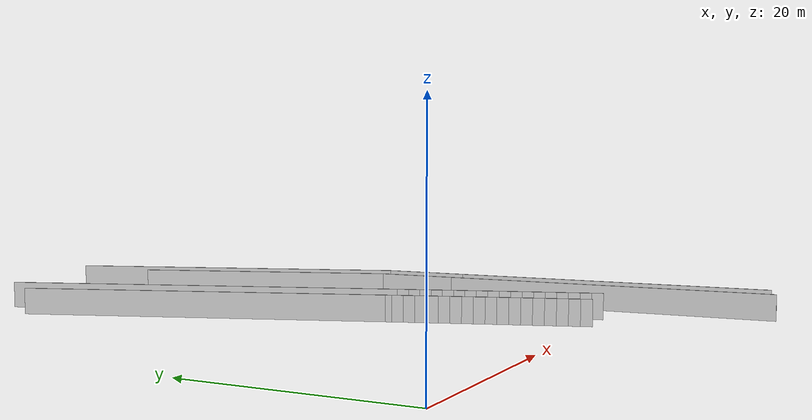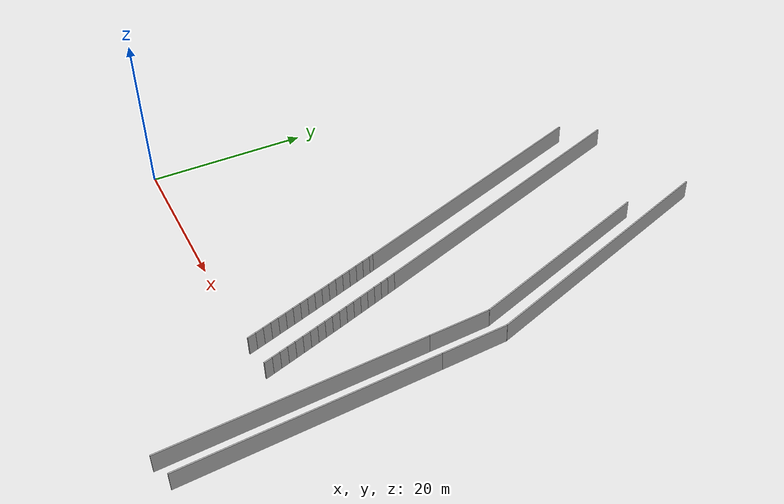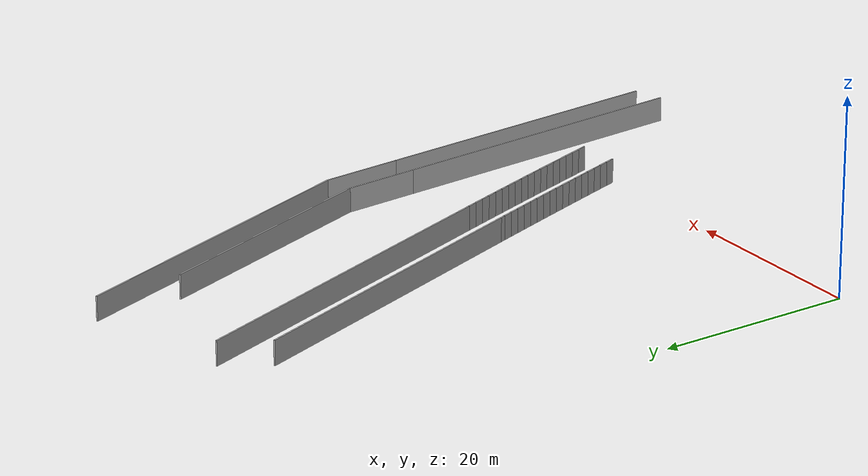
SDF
<?xml version="1.0" ?>
<sdf version="1.6">
  <model name="sps_4531">
    <pose frame="">0 0 0 0 -0 0</pose>
    <static>1</static>
    <self_collide>0</self_collide>
    <allow_auto_disable>0</allow_auto_disable>
    <link name="Wall79">
      <kinematic>0</kinematic>
      <gravity>1</gravity>
      <self_collide>0</self_collide>
      <collision name="collision">
        <geometry>
          <box>
            <size>34.9065 0.15 2.5</size>
          </box>
        </geometry>
        <pose frame="">0 0 0 0 -0 0</pose>
      </collision>
      <visual name="visual">
        <geometry>
          <box>
            <size>34.9065 0.15 2.5</size>
          </box>
        </geometry>
        <pose frame="">0 0 0 0 -0 0</pose>
        <cast_shadows>1</cast_shadows>
        <transparency>0.0</transparency>
      </visual>
      <pose frame="">40.3598 42.6503 1.25 0 0 -1.22655</pose>
    </link>
    <link name="Wall321">
      <kinematic>0</kinematic>
      <gravity>1</gravity>
      <self_collide>0</self_collide>
      <collision name="collision">
        <geometry>
          <box>
            <size>38.8428 0.15 2.5</size>
          </box>
        </geometry>
        <pose frame="">0 0 0 0 -0 0</pose>
      </collision>
      <visual name="visual">
        <geometry>
          <box>
            <size>38.8428 0.15 2.5</size>
          </box>
        </geometry>
        <pose frame="">0 0 0 0 -0 0</pose>
        <cast_shadows>1</cast_shadows>
        <transparency>0.0</transparency>
      </visual>
      <pose frame="">26.4372 37.007 1.25 0 0 -1.22664</pose>
    </link>
    <link name="Wall578">
      <kinematic>0</kinematic>
      <gravity>1</gravity>
      <self_collide>0</self_collide>
      <collision name="collision">
        <geometry>
          <box>
            <size>26.1171 0.15 2.5</size>
          </box>
        </geometry>
        <pose frame="">0 0 0 0 -0 0</pose>
      </collision>
      <visual name="visual">
        <geometry>
          <box>
            <size>26.1171 0.15 2.5</size>
          </box>
        </geometry>
        <pose frame="">0 0 0 0 -0 0</pose>
        <cast_shadows>1</cast_shadows>
        <transparency>0.0</transparency>
      </visual>
      <pose frame="">38.8765 37.8979 1.25 0 0 -1.22655</pose>
    </link>
    <link name="Wall579">
      <kinematic>0</kinematic>
      <gravity>1</gravity>
      <self_collide>0</self_collide>
      <collision name="collision">
        <geometry>
          <box>
            <size>8.34564 0.15 2.5</size>
          </box>
        </geometry>
        <pose frame="">0 0 0 0 -0 0</pose>
      </collision>
      <visual name="visual">
        <geometry>
          <box>
            <size>8.34564 0.15 2.5</size>
          </box>
        </geometry>
        <pose frame="">0 0 0 0 -0 0</pose>
        <cast_shadows>1</cast_shadows>
        <transparency>0.0</transparency>
      </visual>
      <pose frame="">46.5213 22.0571 1.25 0 0 -1.50576</pose>
    </link>
    <link name="Wall580">
      <kinematic>0</kinematic>
      <gravity>1</gravity>
      <self_collide>0</self_collide>
      <collision name="collision">
        <geometry>
          <box>
            <size>31.2306 0.15 2.5</size>
          </box>
        </geometry>
        <pose frame="">0 0 0 0 -0 0</pose>
      </collision>
      <visual name="visual">
        <geometry>
          <box>
            <size>31.2306 0.15 2.5</size>
          </box>
        </geometry>
        <pose frame="">0 0 0 0 -0 0</pose>
        <cast_shadows>1</cast_shadows>
        <transparency>0.0</transparency>
      </visual>
      <pose frame="">47.8072 2.31077 1.25 0 0 -1.50576</pose>
    </link>
    <link name="Wall656">
      <kinematic>0</kinematic>
      <gravity>1</gravity>
      <self_collide>0</self_collide>
      <collision name="collision">
        <geometry>
          <box>
            <size>0.58996 0.15 2.5</size>
          </box>
        </geometry>
        <pose frame="">0 0 0 0 -0 0</pose>
      </collision>
      <visual name="visual">
        <geometry>
          <box>
            <size>0.58996 0.15 2.5</size>
          </box>
        </geometry>
        <pose frame="">0 0 0 0 -0 0</pose>
        <cast_shadows>1</cast_shadows>
        <transparency>0.0</transparency>
      </visual>
      <pose frame="">28.9899 17.6154 1.25 0 -0 1.91499</pose>
    </link>
    <link name="Wall657">
      <kinematic>0</kinematic>
      <gravity>1</gravity>
      <self_collide>0</self_collide>
      <collision name="collision">
        <geometry>
          <box>
            <size>35.1918 0.15 2.5</size>
          </box>
        </geometry>
        <pose frame="">0 0 0 0 -0 0</pose>
      </collision>
      <visual name="visual">
        <geometry>
          <box>
            <size>35.1918 0.15 2.5</size>
          </box>
        </geometry>
        <pose frame="">0 0 0 0 -0 0</pose>
        <cast_shadows>1</cast_shadows>
        <transparency>0.0</transparency>
      </visual>
      <pose frame="">22.9529 34.457 1.25 0 -0 1.91499</pose>
    </link>
    <link name="Wall658">
      <kinematic>0</kinematic>
      <gravity>1</gravity>
      <self_collide>0</self_collide>
      <collision name="collision">
        <geometry>
          <box>
            <size>7.72874 0.15 2.5</size>
          </box>
        </geometry>
        <pose frame="">0 0 0 0 -0 0</pose>
      </collision>
      <visual name="visual">
        <geometry>
          <box>
            <size>7.72874 0.15 2.5</size>
          </box>
        </geometry>
        <pose frame="">0 0 0 0 -0 0</pose>
        <cast_shadows>1</cast_shadows>
        <transparency>0.0</transparency>
      </visual>
      <pose frame="">43.5348 21.7493 1.25 0 0 -1.50576</pose>
    </link>
    <link name="Wall659">
      <kinematic>0</kinematic>
      <gravity>1</gravity>
      <self_collide>0</self_collide>
      <collision name="collision">
        <geometry>
          <box>
            <size>32.1389 0.15 2.5</size>
          </box>
        </geometry>
        <pose frame="">0 0 0 0 -0 0</pose>
      </collision>
      <visual name="visual">
        <geometry>
          <box>
            <size>32.1389 0.15 2.5</size>
          </box>
        </geometry>
        <pose frame="">0 0 0 0 -0 0</pose>
        <cast_shadows>1</cast_shadows>
        <transparency>0.0</transparency>
      </visual>
      <pose frame="">44.8302 1.85759 1.25 0 0 -1.50576</pose>
    </link>
    <link name="Wall8224">
      <kinematic>0</kinematic>
      <gravity>1</gravity>
      <self_collide>0</self_collide>
      <collision name="collision">
        <geometry>
          <box>
            <size>1.08068 0.15 2.5</size>
          </box>
        </geometry>
        <pose frame="">0 0 0 0 -0 0</pose>
      </collision>
      <visual name="visual">
        <geometry>
          <box>
            <size>1.08068 0.15 2.5</size>
          </box>
        </geometry>
        <pose frame="">0 0 0 0 -0 0</pose>
        <cast_shadows>1</cast_shadows>
        <transparency>0.0</transparency>
      </visual>
      <pose frame="">39.1469 0.842879 1.25 0 -0 1.8926</pose>
    </link>
    <link name="Wall8225">
      <kinematic>0</kinematic>
      <gravity>1</gravity>
      <self_collide>0</self_collide>
      <collision name="collision">
        <geometry>
          <box>
            <size>1.08059 0.15 2.5</size>
          </box>
        </geometry>
        <pose frame="">0 0 0 0 -0 0</pose>
      </collision>
      <visual name="visual">
        <geometry>
          <box>
            <size>1.08059 0.15 2.5</size>
          </box>
        </geometry>
        <pose frame="">0 0 0 0 -0 0</pose>
        <cast_shadows>1</cast_shadows>
        <transparency>0.0</transparency>
      </visual>
      <pose frame="">38.8046 1.86787 1.25 0 -0 1.89358</pose>
    </link>
    <link name="Wall8226">
      <kinematic>0</kinematic>
      <gravity>1</gravity>
      <self_collide>0</self_collide>
      <collision name="collision">
        <geometry>
          <box>
            <size>1.08063 0.15 2.5</size>
          </box>
        </geometry>
        <pose frame="">0 0 0 0 -0 0</pose>
      </collision>
      <visual name="visual">
        <geometry>
          <box>
            <size>1.08063 0.15 2.5</size>
          </box>
        </geometry>
        <pose frame="">0 0 0 0 -0 0</pose>
        <cast_shadows>1</cast_shadows>
        <transparency>0.0</transparency>
      </visual>
      <pose frame="">38.4613 2.89247 1.25 0 -0 1.89476</pose>
    </link>
    <link name="Wall8227">
      <kinematic>0</kinematic>
      <gravity>1</gravity>
      <self_collide>0</self_collide>
      <collision name="collision">
        <geometry>
          <box>
            <size>1.08084 0.15 2.5</size>
          </box>
        </geometry>
        <pose frame="">0 0 0 0 -0 0</pose>
      </collision>
      <visual name="visual">
        <geometry>
          <box>
            <size>1.08084 0.15 2.5</size>
          </box>
        </geometry>
        <pose frame="">0 0 0 0 -0 0</pose>
        <cast_shadows>1</cast_shadows>
        <transparency>0.0</transparency>
      </visual>
      <pose frame="">38.1167 3.91679 1.25 0 -0 1.89589</pose>
    </link>
    <link name="Wall8228">
      <kinematic>0</kinematic>
      <gravity>1</gravity>
      <self_collide>0</self_collide>
      <collision name="collision">
        <geometry>
          <box>
            <size>1.08052 0.15 2.5</size>
          </box>
        </geometry>
        <pose frame="">0 0 0 0 -0 0</pose>
      </collision>
      <visual name="visual">
        <geometry>
          <box>
            <size>1.08052 0.15 2.5</size>
          </box>
        </geometry>
        <pose frame="">0 0 0 0 -0 0</pose>
        <cast_shadows>1</cast_shadows>
        <transparency>0.0</transparency>
      </visual>
      <pose frame="">37.771 4.94069 1.25 0 -0 1.89694</pose>
    </link>
    <link name="Wall8229">
      <kinematic>0</kinematic>
      <gravity>1</gravity>
      <self_collide>0</self_collide>
      <collision name="collision">
        <geometry>
          <box>
            <size>1.0808 0.15 2.5</size>
          </box>
        </geometry>
        <pose frame="">0 0 0 0 -0 0</pose>
      </collision>
      <visual name="visual">
        <geometry>
          <box>
            <size>1.0808 0.15 2.5</size>
          </box>
        </geometry>
        <pose frame="">0 0 0 0 -0 0</pose>
        <cast_shadows>1</cast_shadows>
        <transparency>0.0</transparency>
      </visual>
      <pose frame="">37.4242 5.96419 1.25 0 -0 1.89805</pose>
    </link>
    <link name="Wall8230">
      <kinematic>0</kinematic>
      <gravity>1</gravity>
      <self_collide>0</self_collide>
      <collision name="collision">
        <geometry>
          <box>
            <size>1.08076 0.15 2.5</size>
          </box>
        </geometry>
        <pose frame="">0 0 0 0 -0 0</pose>
      </collision>
      <visual name="visual">
        <geometry>
          <box>
            <size>1.08076 0.15 2.5</size>
          </box>
        </geometry>
        <pose frame="">0 0 0 0 -0 0</pose>
        <cast_shadows>1</cast_shadows>
        <transparency>0.0</transparency>
      </visual>
      <pose frame="">37.0762 6.98741 1.25 0 -0 1.89919</pose>
    </link>
    <link name="Wall8231">
      <kinematic>0</kinematic>
      <gravity>1</gravity>
      <self_collide>0</self_collide>
      <collision name="collision">
        <geometry>
          <box>
            <size>1.08058 0.15 2.5</size>
          </box>
        </geometry>
        <pose frame="">0 0 0 0 -0 0</pose>
      </collision>
      <visual name="visual">
        <geometry>
          <box>
            <size>1.08058 0.15 2.5</size>
          </box>
        </geometry>
        <pose frame="">0 0 0 0 -0 0</pose>
        <cast_shadows>1</cast_shadows>
        <transparency>0.0</transparency>
      </visual>
      <pose frame="">36.727 8.01012 1.25 0 -0 1.90044</pose>
    </link>
    <link name="Wall8232">
      <kinematic>0</kinematic>
      <gravity>1</gravity>
      <self_collide>0</self_collide>
      <collision name="collision">
        <geometry>
          <box>
            <size>1.08075 0.15 2.5</size>
          </box>
        </geometry>
        <pose frame="">0 0 0 0 -0 0</pose>
      </collision>
      <visual name="visual">
        <geometry>
          <box>
            <size>1.08075 0.15 2.5</size>
          </box>
        </geometry>
        <pose frame="">0 0 0 0 -0 0</pose>
        <cast_shadows>1</cast_shadows>
        <transparency>0.0</transparency>
      </visual>
      <pose frame="">36.3766 9.03239 1.25 0 -0 1.90158</pose>
    </link>
    <link name="Wall8233">
      <kinematic>0</kinematic>
      <gravity>1</gravity>
      <self_collide>0</self_collide>
      <collision name="collision">
        <geometry>
          <box>
            <size>1.08085 0.15 2.5</size>
          </box>
        </geometry>
        <pose frame="">0 0 0 0 -0 0</pose>
      </collision>
      <visual name="visual">
        <geometry>
          <box>
            <size>1.08085 0.15 2.5</size>
          </box>
        </geometry>
        <pose frame="">0 0 0 0 -0 0</pose>
        <cast_shadows>1</cast_shadows>
        <transparency>0.0</transparency>
      </visual>
      <pose frame="">36.025 10.0544 1.25 0 -0 1.90274</pose>
    </link>
    <link name="Wall8234">
      <kinematic>0</kinematic>
      <gravity>1</gravity>
      <self_collide>0</self_collide>
      <collision name="collision">
        <geometry>
          <box>
            <size>1.08071 0.15 2.5</size>
          </box>
        </geometry>
        <pose frame="">0 0 0 0 -0 0</pose>
      </collision>
      <visual name="visual">
        <geometry>
          <box>
            <size>1.08071 0.15 2.5</size>
          </box>
        </geometry>
        <pose frame="">0 0 0 0 -0 0</pose>
        <cast_shadows>1</cast_shadows>
        <transparency>0.0</transparency>
      </visual>
      <pose frame="">35.6722 11.076 1.25 0 -0 1.90375</pose>
    </link>
    <link name="Wall8235">
      <kinematic>0</kinematic>
      <gravity>1</gravity>
      <self_collide>0</self_collide>
      <collision name="collision">
        <geometry>
          <box>
            <size>1.08057 0.15 2.5</size>
          </box>
        </geometry>
        <pose frame="">0 0 0 0 -0 0</pose>
      </collision>
      <visual name="visual">
        <geometry>
          <box>
            <size>1.08057 0.15 2.5</size>
          </box>
        </geometry>
        <pose frame="">0 0 0 0 -0 0</pose>
        <cast_shadows>1</cast_shadows>
        <transparency>0.0</transparency>
      </visual>
      <pose frame="">35.3184 12.0971 1.25 0 -0 1.90493</pose>
    </link>
    <link name="Wall8236">
      <kinematic>0</kinematic>
      <gravity>1</gravity>
      <self_collide>0</self_collide>
      <collision name="collision">
        <geometry>
          <box>
            <size>1.0808 0.15 2.5</size>
          </box>
        </geometry>
        <pose frame="">0 0 0 0 -0 0</pose>
      </collision>
      <visual name="visual">
        <geometry>
          <box>
            <size>1.0808 0.15 2.5</size>
          </box>
        </geometry>
        <pose frame="">0 0 0 0 -0 0</pose>
        <cast_shadows>1</cast_shadows>
        <transparency>0.0</transparency>
      </visual>
      <pose frame="">34.9634 13.1178 1.25 0 -0 1.90623</pose>
    </link>
    <link name="Wall8237">
      <kinematic>0</kinematic>
      <gravity>1</gravity>
      <self_collide>0</self_collide>
      <collision name="collision">
        <geometry>
          <box>
            <size>1.08057 0.15 2.5</size>
          </box>
        </geometry>
        <pose frame="">0 0 0 0 -0 0</pose>
      </collision>
      <visual name="visual">
        <geometry>
          <box>
            <size>1.08057 0.15 2.5</size>
          </box>
        </geometry>
        <pose frame="">0 0 0 0 -0 0</pose>
        <cast_shadows>1</cast_shadows>
        <transparency>0.0</transparency>
      </visual>
      <pose frame="">34.6072 14.1381 1.25 0 -0 1.90714</pose>
    </link>
    <link name="Wall8238">
      <kinematic>0</kinematic>
      <gravity>1</gravity>
      <self_collide>0</self_collide>
      <collision name="collision">
        <geometry>
          <box>
            <size>1.08084 0.15 2.5</size>
          </box>
        </geometry>
        <pose frame="">0 0 0 0 -0 0</pose>
      </collision>
      <visual name="visual">
        <geometry>
          <box>
            <size>1.08084 0.15 2.5</size>
          </box>
        </geometry>
        <pose frame="">0 0 0 0 -0 0</pose>
        <cast_shadows>1</cast_shadows>
        <transparency>0.0</transparency>
      </visual>
      <pose frame="">34.2499 15.158 1.25 0 -0 1.90837</pose>
    </link>
    <link name="Wall8239">
      <kinematic>0</kinematic>
      <gravity>1</gravity>
      <self_collide>0</self_collide>
      <collision name="collision">
        <geometry>
          <box>
            <size>1.08055 0.15 2.5</size>
          </box>
        </geometry>
        <pose frame="">0 0 0 0 -0 0</pose>
      </collision>
      <visual name="visual">
        <geometry>
          <box>
            <size>1.08055 0.15 2.5</size>
          </box>
        </geometry>
        <pose frame="">0 0 0 0 -0 0</pose>
        <cast_shadows>1</cast_shadows>
        <transparency>0.0</transparency>
      </visual>
      <pose frame="">33.8914 16.1775 1.25 0 -0 1.90948</pose>
    </link>
    <link name="Wall8240">
      <kinematic>0</kinematic>
      <gravity>1</gravity>
      <self_collide>0</self_collide>
      <collision name="collision">
        <geometry>
          <box>
            <size>1.08078 0.15 2.5</size>
          </box>
        </geometry>
        <pose frame="">0 0 0 0 -0 0</pose>
      </collision>
      <visual name="visual">
        <geometry>
          <box>
            <size>1.08078 0.15 2.5</size>
          </box>
        </geometry>
        <pose frame="">0 0 0 0 -0 0</pose>
        <cast_shadows>1</cast_shadows>
        <transparency>0.0</transparency>
      </visual>
      <pose frame="">33.5318 17.1966 1.25 0 -0 1.9106</pose>
    </link>
    <link name="Wall8241">
      <kinematic>0</kinematic>
      <gravity>1</gravity>
      <self_collide>0</self_collide>
      <collision name="collision">
        <geometry>
          <box>
            <size>1.08071 0.15 2.5</size>
          </box>
        </geometry>
        <pose frame="">0 0 0 0 -0 0</pose>
      </collision>
      <visual name="visual">
        <geometry>
          <box>
            <size>1.08071 0.15 2.5</size>
          </box>
        </geometry>
        <pose frame="">0 0 0 0 -0 0</pose>
        <cast_shadows>1</cast_shadows>
        <transparency>0.0</transparency>
      </visual>
      <pose frame="">33.1709 18.2153 1.25 0 -0 1.91194</pose>
    </link>
    <link name="Wall9136">
      <kinematic>0</kinematic>
      <gravity>1</gravity>
      <self_collide>0</self_collide>
      <collision name="collision">
        <geometry>
          <box>
            <size>1.07599 0.15 2.5</size>
          </box>
        </geometry>
        <pose frame="">0 0 0 0 -0 0</pose>
      </collision>
      <visual name="visual">
        <geometry>
          <box>
            <size>1.07599 0.15 2.5</size>
          </box>
        </geometry>
        <pose frame="">0 0 0 0 -0 0</pose>
        <cast_shadows>1</cast_shadows>
        <transparency>0.0</transparency>
      </visual>
      <pose frame="">34.8786 0.554702 1.25 0 -0 1.89369</pose>
    </link>
    <link name="Wall9137">
      <kinematic>0</kinematic>
      <gravity>1</gravity>
      <self_collide>0</self_collide>
      <collision name="collision">
        <geometry>
          <box>
            <size>1.07596 0.15 2.5</size>
          </box>
        </geometry>
        <pose frame="">0 0 0 0 -0 0</pose>
      </collision>
      <visual name="visual">
        <geometry>
          <box>
            <size>1.07596 0.15 2.5</size>
          </box>
        </geometry>
        <pose frame="">0 0 0 0 -0 0</pose>
        <cast_shadows>1</cast_shadows>
        <transparency>0.0</transparency>
      </visual>
      <pose frame="">34.5366 1.5749 1.25 0 -0 1.89466</pose>
    </link>
    <link name="Wall9138">
      <kinematic>0</kinematic>
      <gravity>1</gravity>
      <self_collide>0</self_collide>
      <collision name="collision">
        <geometry>
          <box>
            <size>1.076 0.15 2.5</size>
          </box>
        </geometry>
        <pose frame="">0 0 0 0 -0 0</pose>
      </collision>
      <visual name="visual">
        <geometry>
          <box>
            <size>1.076 0.15 2.5</size>
          </box>
        </geometry>
        <pose frame="">0 0 0 0 -0 0</pose>
        <cast_shadows>1</cast_shadows>
        <transparency>0.0</transparency>
      </visual>
      <pose frame="">34.1935 2.59471 1.25 0 -0 1.89603</pose>
    </link>
    <link name="Wall9139">
      <kinematic>0</kinematic>
      <gravity>1</gravity>
      <self_collide>0</self_collide>
      <collision name="collision">
        <geometry>
          <box>
            <size>1.07591 0.15 2.5</size>
          </box>
        </geometry>
        <pose frame="">0 0 0 0 -0 0</pose>
      </collision>
      <visual name="visual">
        <geometry>
          <box>
            <size>1.07591 0.15 2.5</size>
          </box>
        </geometry>
        <pose frame="">0 0 0 0 -0 0</pose>
        <cast_shadows>1</cast_shadows>
        <transparency>0.0</transparency>
      </visual>
      <pose frame="">33.8492 3.61409 1.25 0 -0 1.89701</pose>
    </link>
    <link name="Wall9140">
      <kinematic>0</kinematic>
      <gravity>1</gravity>
      <self_collide>0</self_collide>
      <collision name="collision">
        <geometry>
          <box>
            <size>1.07618 0.15 2.5</size>
          </box>
        </geometry>
        <pose frame="">0 0 0 0 -0 0</pose>
      </collision>
      <visual name="visual">
        <geometry>
          <box>
            <size>1.07618 0.15 2.5</size>
          </box>
        </geometry>
        <pose frame="">0 0 0 0 -0 0</pose>
        <cast_shadows>1</cast_shadows>
        <transparency>0.0</transparency>
      </visual>
      <pose frame="">33.5038 4.63319 1.25 0 -0 1.89812</pose>
    </link>
    <link name="Wall9141">
      <kinematic>0</kinematic>
      <gravity>1</gravity>
      <self_collide>0</self_collide>
      <collision name="collision">
        <geometry>
          <box>
            <size>1.07586 0.15 2.5</size>
          </box>
        </geometry>
        <pose frame="">0 0 0 0 -0 0</pose>
      </collision>
      <visual name="visual">
        <geometry>
          <box>
            <size>1.07586 0.15 2.5</size>
          </box>
        </geometry>
        <pose frame="">0 0 0 0 -0 0</pose>
        <cast_shadows>1</cast_shadows>
        <transparency>0.0</transparency>
      </visual>
      <pose frame="">33.1573 5.6519 1.25 0 -0 1.89918</pose>
    </link>
    <link name="Wall9142">
      <kinematic>0</kinematic>
      <gravity>1</gravity>
      <self_collide>0</self_collide>
      <collision name="collision">
        <geometry>
          <box>
            <size>1.07608 0.15 2.5</size>
          </box>
        </geometry>
        <pose frame="">0 0 0 0 -0 0</pose>
      </collision>
      <visual name="visual">
        <geometry>
          <box>
            <size>1.07608 0.15 2.5</size>
          </box>
        </geometry>
        <pose frame="">0 0 0 0 -0 0</pose>
        <cast_shadows>1</cast_shadows>
        <transparency>0.0</transparency>
      </visual>
      <pose frame="">32.8097 6.67018 1.25 0 -0 1.90031</pose>
    </link>
    <link name="Wall9143">
      <kinematic>0</kinematic>
      <gravity>1</gravity>
      <self_collide>0</self_collide>
      <collision name="collision">
        <geometry>
          <box>
            <size>1.07594 0.15 2.5</size>
          </box>
        </geometry>
        <pose frame="">0 0 0 0 -0 0</pose>
      </collision>
      <visual name="visual">
        <geometry>
          <box>
            <size>1.07594 0.15 2.5</size>
          </box>
        </geometry>
        <pose frame="">0 0 0 0 -0 0</pose>
        <cast_shadows>1</cast_shadows>
        <transparency>0.0</transparency>
      </visual>
      <pose frame="">32.461 7.68809 1.25 0 -0 1.9015</pose>
    </link>
    <link name="Wall9144">
      <kinematic>0</kinematic>
      <gravity>1</gravity>
      <self_collide>0</self_collide>
      <collision name="collision">
        <geometry>
          <box>
            <size>1.07589 0.15 2.5</size>
          </box>
        </geometry>
        <pose frame="">0 0 0 0 -0 0</pose>
      </collision>
      <visual name="visual">
        <geometry>
          <box>
            <size>1.07589 0.15 2.5</size>
          </box>
        </geometry>
        <pose frame="">0 0 0 0 -0 0</pose>
        <cast_shadows>1</cast_shadows>
        <transparency>0.0</transparency>
      </visual>
      <pose frame="">32.111 8.70549 1.25 0 -0 1.90277</pose>
    </link>
    <link name="Wall9145">
      <kinematic>0</kinematic>
      <gravity>1</gravity>
      <self_collide>0</self_collide>
      <collision name="collision">
        <geometry>
          <box>
            <size>1.07614 0.15 2.5</size>
          </box>
        </geometry>
        <pose frame="">0 0 0 0 -0 0</pose>
      </collision>
      <visual name="visual">
        <geometry>
          <box>
            <size>1.07614 0.15 2.5</size>
          </box>
        </geometry>
        <pose frame="">0 0 0 0 -0 0</pose>
        <cast_shadows>1</cast_shadows>
        <transparency>0.0</transparency>
      </visual>
      <pose frame="">31.7598 9.72258 1.25 0 -0 1.90377</pose>
    </link>
    <link name="Wall9146">
      <kinematic>0</kinematic>
      <gravity>1</gravity>
      <self_collide>0</self_collide>
      <collision name="collision">
        <geometry>
          <box>
            <size>1.07598 0.15 2.5</size>
          </box>
        </geometry>
        <pose frame="">0 0 0 0 -0 0</pose>
      </collision>
      <visual name="visual">
        <geometry>
          <box>
            <size>1.07598 0.15 2.5</size>
          </box>
        </geometry>
        <pose frame="">0 0 0 0 -0 0</pose>
        <cast_shadows>1</cast_shadows>
        <transparency>0.0</transparency>
      </visual>
      <pose frame="">31.4074 10.7393 1.25 0 -0 1.90509</pose>
    </link>
    <link name="Wall9147">
      <kinematic>0</kinematic>
      <gravity>1</gravity>
      <self_collide>0</self_collide>
      <collision name="collision">
        <geometry>
          <box>
            <size>1.0759 0.15 2.5</size>
          </box>
        </geometry>
        <pose frame="">0 0 0 0 -0 0</pose>
      </collision>
      <visual name="visual">
        <geometry>
          <box>
            <size>1.0759 0.15 2.5</size>
          </box>
        </geometry>
        <pose frame="">0 0 0 0 -0 0</pose>
        <cast_shadows>1</cast_shadows>
        <transparency>0.0</transparency>
      </visual>
      <pose frame="">31.0539 11.7555 1.25 0 -0 1.90607</pose>
    </link>
    <link name="Wall9148">
      <kinematic>0</kinematic>
      <gravity>1</gravity>
      <self_collide>0</self_collide>
      <collision name="collision">
        <geometry>
          <box>
            <size>1.07613 0.15 2.5</size>
          </box>
        </geometry>
        <pose frame="">0 0 0 0 -0 0</pose>
      </collision>
      <visual name="visual">
        <geometry>
          <box>
            <size>1.07613 0.15 2.5</size>
          </box>
        </geometry>
        <pose frame="">0 0 0 0 -0 0</pose>
        <cast_shadows>1</cast_shadows>
        <transparency>0.0</transparency>
      </visual>
      <pose frame="">30.6992 12.7714 1.25 0 -0 1.9072</pose>
    </link>
    <link name="Wall9149">
      <kinematic>0</kinematic>
      <gravity>1</gravity>
      <self_collide>0</self_collide>
      <collision name="collision">
        <geometry>
          <box>
            <size>1.07594 0.15 2.5</size>
          </box>
        </geometry>
        <pose frame="">0 0 0 0 -0 0</pose>
      </collision>
      <visual name="visual">
        <geometry>
          <box>
            <size>1.07594 0.15 2.5</size>
          </box>
        </geometry>
        <pose frame="">0 0 0 0 -0 0</pose>
        <cast_shadows>1</cast_shadows>
        <transparency>0.0</transparency>
      </visual>
      <pose frame="">30.3434 13.7869 1.25 0 -0 1.90841</pose>
    </link>
    <link name="Wall9150">
      <kinematic>0</kinematic>
      <gravity>1</gravity>
      <self_collide>0</self_collide>
      <collision name="collision">
        <geometry>
          <box>
            <size>1.07586 0.15 2.5</size>
          </box>
        </geometry>
        <pose frame="">0 0 0 0 -0 0</pose>
      </collision>
      <visual name="visual">
        <geometry>
          <box>
            <size>1.07586 0.15 2.5</size>
          </box>
        </geometry>
        <pose frame="">0 0 0 0 -0 0</pose>
        <cast_shadows>1</cast_shadows>
        <transparency>0.0</transparency>
      </visual>
      <pose frame="">29.9866 14.8019 1.25 0 -0 1.90939</pose>
    </link>
    <link name="Wall9151">
      <kinematic>0</kinematic>
      <gravity>1</gravity>
      <self_collide>0</self_collide>
      <collision name="collision">
        <geometry>
          <box>
            <size>1.07594 0.15 2.5</size>
          </box>
        </geometry>
        <pose frame="">0 0 0 0 -0 0</pose>
      </collision>
      <visual name="visual">
        <geometry>
          <box>
            <size>1.07594 0.15 2.5</size>
          </box>
        </geometry>
        <pose frame="">0 0 0 0 -0 0</pose>
        <cast_shadows>1</cast_shadows>
        <transparency>0.0</transparency>
      </visual>
      <pose frame="">29.6286 15.8165 1.25 0 -0 1.91063</pose>
    </link>
    <link name="Wall9152">
      <kinematic>0</kinematic>
      <gravity>1</gravity>
      <self_collide>0</self_collide>
      <collision name="collision">
        <geometry>
          <box>
            <size>1.07598 0.15 2.5</size>
          </box>
        </geometry>
        <pose frame="">0 0 0 0 -0 0</pose>
      </collision>
      <visual name="visual">
        <geometry>
          <box>
            <size>1.07598 0.15 2.5</size>
          </box>
        </geometry>
        <pose frame="">0 0 0 0 -0 0</pose>
        <cast_shadows>1</cast_shadows>
        <transparency>0.0</transparency>
      </visual>
      <pose frame="">29.2693 16.8307 1.25 0 -0 1.91176</pose>
    </link>
  </model>
</sdf>
